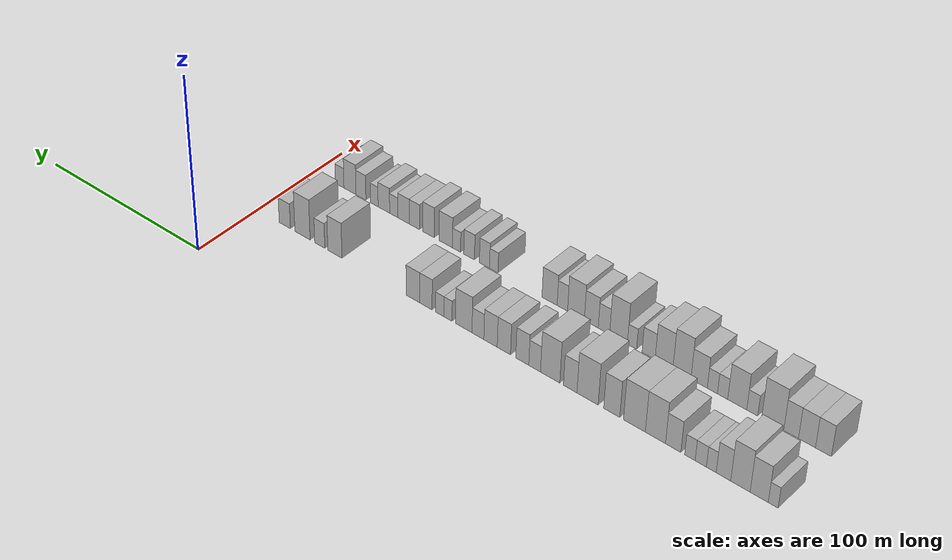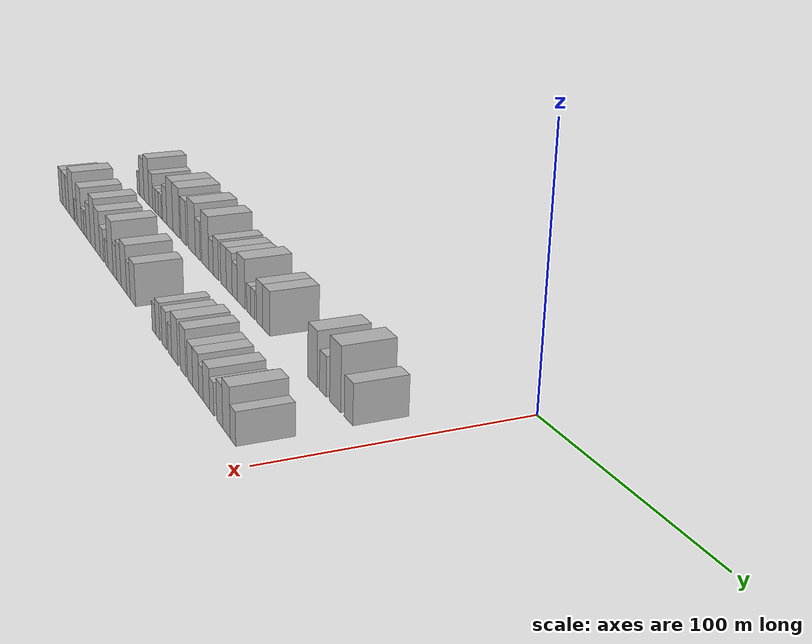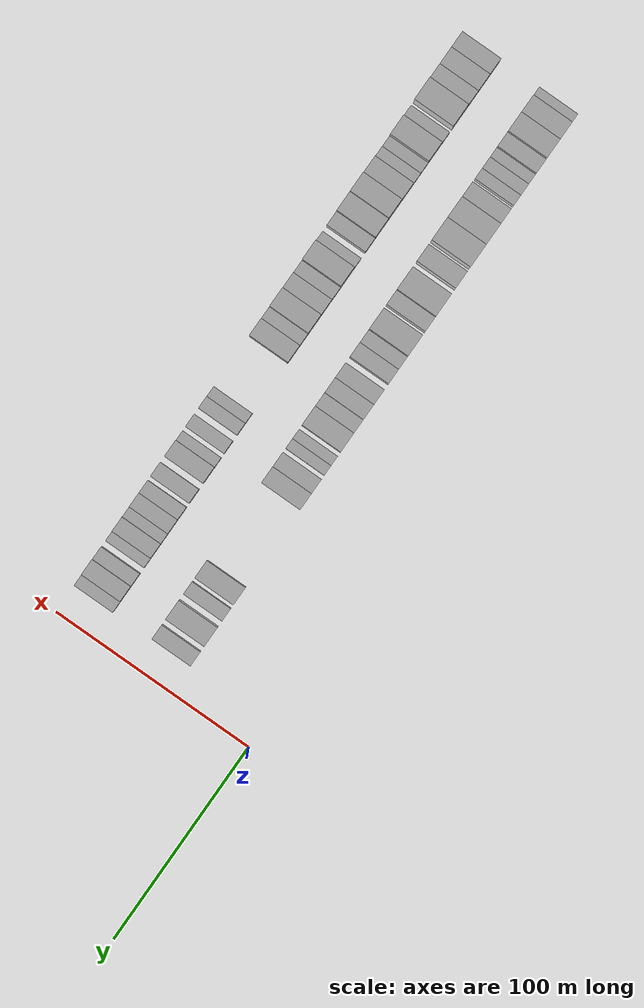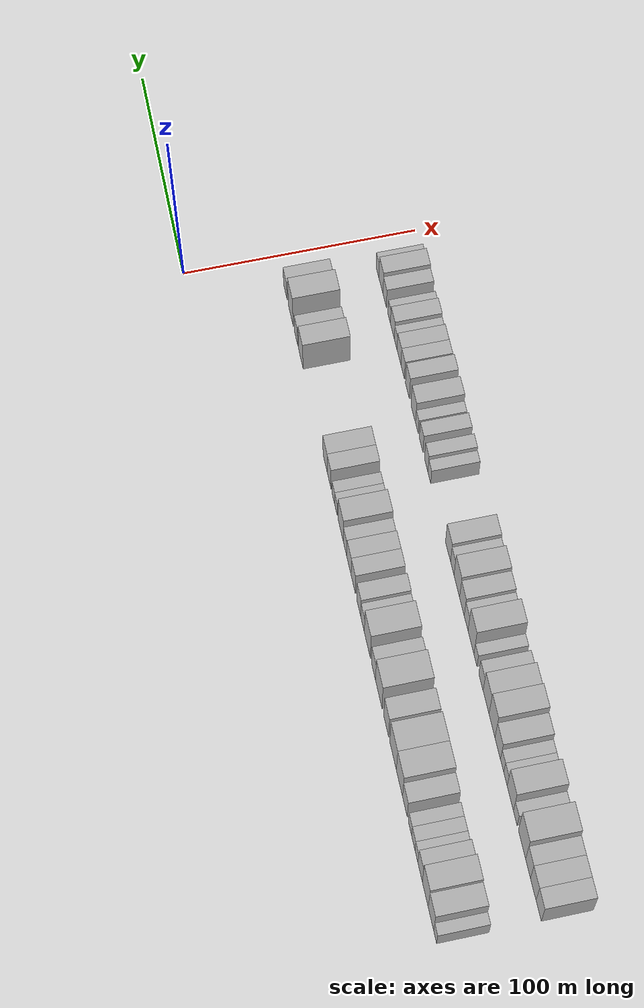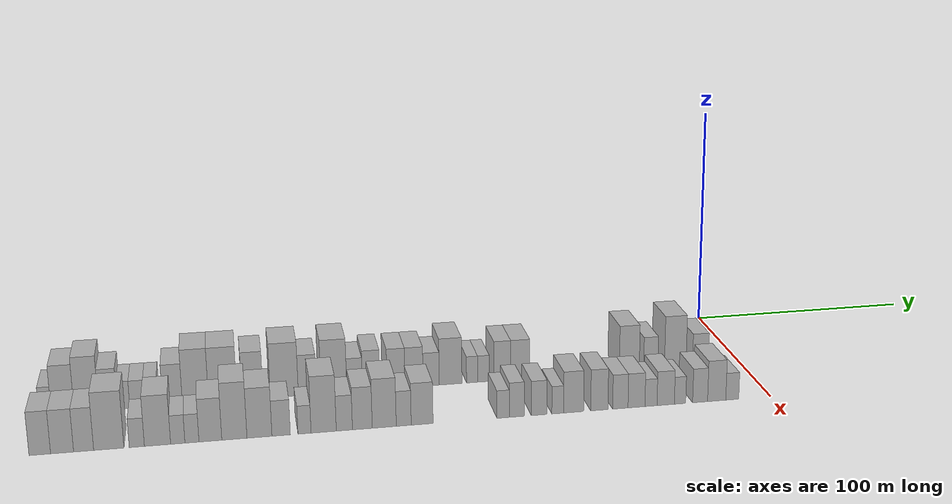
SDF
<sdf version="1.6">
 <world name="default">
  <model name="building_1">
   <static>1</static>
   <pose>50.0000 -297.5527 0 0.000000 0.000000 0.000000</pose>
   <link name="link">
    <pose>0 0 6.00 0 0 0</pose>
    <collision name="collision"><geometry><box><size>20.0000 4.8946 12.0000</size></box></geometry></collision>
    <visual name="visual">
     <cast_shadows>0</cast_shadows>
     <geometry><box><size>20.0000 4.8946 12.0000</size></box></geometry>
     <material>
      <script>
       <uri>model://HANNAS_wall/materials/scripts</uri>
       <uri>model://HANNAS_wall/materials/textures</uri>
       <name>vrc/HANNAS_wall</name>
      </script>
     </material>
    </visual>
   </link>
  </model>
  <model name="building_2">
   <static>1</static>
   <pose>50.0000 -290.5710 0 0.000000 0.000000 0.000000</pose>
   <link name="link">
    <pose>0 0 10.50 0 0 0</pose>
    <collision name="collision"><geometry><box><size>20.0000 9.0688 21.0000</size></box></geometry></collision>
    <visual name="visual">
     <cast_shadows>0</cast_shadows>
     <geometry><box><size>20.0000 9.0688 21.0000</size></box></geometry>
     <material>
      <script>
       <uri>model://HANNAS_wall/materials/scripts</uri>
       <uri>model://HANNAS_wall/materials/textures</uri>
       <name>vrc/HANNAS_wall</name>
      </script>
     </material>
    </visual>
   </link>
  </model>
  <model name="building_3">
   <static>1</static>
   <pose>50.0000 -281.1410 0 0.000000 0.000000 0.000000</pose>
   <link name="link">
    <pose>0 0 12.00 0 0 0</pose>
    <collision name="collision"><geometry><box><size>20.0000 9.7911 24.0000</size></box></geometry></collision>
    <visual name="visual">
     <cast_shadows>0</cast_shadows>
     <geometry><box><size>20.0000 9.7911 24.0000</size></box></geometry>
     <material>
      <script>
       <uri>model://HANNAS_wall/materials/scripts</uri>
       <uri>model://HANNAS_wall/materials/textures</uri>
       <name>vrc/HANNAS_wall</name>
      </script>
     </material>
    </visual>
   </link>
  </model>
  <model name="building_4">
   <static>1</static>
   <pose>50.0000 -272.5372 0 0.000000 0.000000 0.000000</pose>
   <link name="link">
    <pose>0 0 9.00 0 0 0</pose>
    <collision name="collision"><geometry><box><size>20.0000 7.4165 18.0000</size></box></geometry></collision>
    <visual name="visual">
     <cast_shadows>0</cast_shadows>
     <geometry><box><size>20.0000 7.4165 18.0000</size></box></geometry>
     <material>
      <script>
       <uri>model://HANNAS_wall/materials/scripts</uri>
       <uri>model://HANNAS_wall/materials/textures</uri>
       <name>vrc/HANNAS_wall</name>
      </script>
     </material>
    </visual>
   </link>
  </model>
  <model name="building_5">
   <static>1</static>
   <pose>50.0000 -266.3257 0 0.000000 0.000000 0.000000</pose>
   <link name="link">
    <pose>0 0 6.00 0 0 0</pose>
    <collision name="collision"><geometry><box><size>20.0000 5.0066 12.0000</size></box></geometry></collision>
    <visual name="visual">
     <cast_shadows>0</cast_shadows>
     <geometry><box><size>20.0000 5.0066 12.0000</size></box></geometry>
     <material>
      <script>
       <uri>model://HANNAS_wall/materials/scripts</uri>
       <uri>model://HANNAS_wall/materials/textures</uri>
       <name>vrc/HANNAS_wall</name>
      </script>
     </material>
    </visual>
   </link>
  </model>
  <model name="building_6">
   <static>1</static>
   <pose>50.0000 -260.9145 0 0.000000 0.000000 0.000000</pose>
   <link name="link">
    <pose>0 0 6.00 0 0 0</pose>
    <collision name="collision"><geometry><box><size>20.0000 5.8157 12.0000</size></box></geometry></collision>
    <visual name="visual">
     <cast_shadows>0</cast_shadows>
     <geometry><box><size>20.0000 5.8157 12.0000</size></box></geometry>
     <material>
      <script>
       <uri>model://HANNAS_wall/materials/scripts</uri>
       <uri>model://HANNAS_wall/materials/textures</uri>
       <name>vrc/HANNAS_wall</name>
      </script>
     </material>
    </visual>
   </link>
  </model>
  <model name="building_7">
   <static>1</static>
   <pose>50.0000 -255.2807 0 0.000000 0.000000 0.000000</pose>
   <link name="link">
    <pose>0 0 6.00 0 0 0</pose>
    <collision name="collision"><geometry><box><size>20.0000 5.4520 12.0000</size></box></geometry></collision>
    <visual name="visual">
     <cast_shadows>0</cast_shadows>
     <geometry><box><size>20.0000 5.4520 12.0000</size></box></geometry>
     <material>
      <script>
       <uri>model://HANNAS_wall/materials/scripts</uri>
       <uri>model://HANNAS_wall/materials/textures</uri>
       <name>vrc/HANNAS_wall</name>
      </script>
     </material>
    </visual>
   </link>
  </model>
  <model name="building_8">
   <static>1</static>
   <pose>50.0000 -246.5573 0 0.000000 0.000000 0.000000</pose>
   <link name="link">
    <pose>0 0 9.00 0 0 0</pose>
    <collision name="collision"><geometry><box><size>20.0000 7.9948 18.0000</size></box></geometry></collision>
    <visual name="visual">
     <cast_shadows>0</cast_shadows>
     <geometry><box><size>20.0000 7.9948 18.0000</size></box></geometry>
     <material>
      <script>
       <uri>model://HANNAS_wall/materials/scripts</uri>
       <uri>model://HANNAS_wall/materials/textures</uri>
       <name>vrc/HANNAS_wall</name>
      </script>
     </material>
    </visual>
   </link>
  </model>
  <model name="building_9">
   <static>1</static>
   <pose>50.0000 -237.2130 0 0.000000 0.000000 0.000000</pose>
   <link name="link">
    <pose>0 0 12.00 0 0 0</pose>
    <collision name="collision"><geometry><box><size>20.0000 10.6939 24.0000</size></box></geometry></collision>
    <visual name="visual">
     <cast_shadows>0</cast_shadows>
     <geometry><box><size>20.0000 10.6939 24.0000</size></box></geometry>
     <material>
      <script>
       <uri>model://HANNAS_wall/materials/scripts</uri>
       <uri>model://HANNAS_wall/materials/textures</uri>
       <name>vrc/HANNAS_wall</name>
      </script>
     </material>
    </visual>
   </link>
  </model>
  <model name="building_10">
   <static>1</static>
   <pose>50.0000 -226.0155 0 0.000000 0.000000 0.000000</pose>
   <link name="link">
    <pose>0 0 12.00 0 0 0</pose>
    <collision name="collision"><geometry><box><size>20.0000 11.7012 24.0000</size></box></geometry></collision>
    <visual name="visual">
     <cast_shadows>0</cast_shadows>
     <geometry><box><size>20.0000 11.7012 24.0000</size></box></geometry>
     <material>
      <script>
       <uri>model://HANNAS_wall/materials/scripts</uri>
       <uri>model://HANNAS_wall/materials/textures</uri>
       <name>vrc/HANNAS_wall</name>
      </script>
     </material>
    </visual>
   </link>
  </model>
  <model name="building_11">
   <static>1</static>
   <pose>50.0000 -213.7931 0 0.000000 0.000000 0.000000</pose>
   <link name="link">
    <pose>0 0 10.50 0 0 0</pose>
    <collision name="collision"><geometry><box><size>20.0000 8.7436 21.0000</size></box></geometry></collision>
    <visual name="visual">
     <cast_shadows>0</cast_shadows>
     <geometry><box><size>20.0000 8.7436 21.0000</size></box></geometry>
     <material>
      <script>
       <uri>model://HANNAS_wall/materials/scripts</uri>
       <uri>model://HANNAS_wall/materials/textures</uri>
       <name>vrc/HANNAS_wall</name>
      </script>
     </material>
    </visual>
   </link>
  </model>
  <model name="building_12">
   <static>1</static>
   <pose>50.0000 -200.5853 0 0.000000 0.000000 0.000000</pose>
   <link name="link">
    <pose>0 0 12.00 0 0 0</pose>
    <collision name="collision"><geometry><box><size>20.0000 11.6719 24.0000</size></box></geometry></collision>
    <visual name="visual">
     <cast_shadows>0</cast_shadows>
     <geometry><box><size>20.0000 11.6719 24.0000</size></box></geometry>
     <material>
      <script>
       <uri>model://HANNAS_wall/materials/scripts</uri>
       <uri>model://HANNAS_wall/materials/textures</uri>
       <name>vrc/HANNAS_wall</name>
      </script>
     </material>
    </visual>
   </link>
  </model>
  <model name="building_13">
   <static>1</static>
   <pose>50.0000 -190.9823 0 0.000000 0.000000 0.000000</pose>
   <link name="link">
    <pose>0 0 9.00 0 0 0</pose>
    <collision name="collision"><geometry><box><size>20.0000 7.5342 18.0000</size></box></geometry></collision>
    <visual name="visual">
     <cast_shadows>0</cast_shadows>
     <geometry><box><size>20.0000 7.5342 18.0000</size></box></geometry>
     <material>
      <script>
       <uri>model://HANNAS_wall/materials/scripts</uri>
       <uri>model://HANNAS_wall/materials/textures</uri>
       <name>vrc/HANNAS_wall</name>
      </script>
     </material>
    </visual>
   </link>
  </model>
  <model name="building_14">
   <static>1</static>
   <pose>50.0000 -179.7867 0 0.000000 0.000000 0.000000</pose>
   <link name="link">
    <pose>0 0 12.00 0 0 0</pose>
    <collision name="collision"><geometry><box><size>20.0000 10.8569 24.0000</size></box></geometry></collision>
    <visual name="visual">
     <cast_shadows>0</cast_shadows>
     <geometry><box><size>20.0000 10.8569 24.0000</size></box></geometry>
     <material>
      <script>
       <uri>model://HANNAS_wall/materials/scripts</uri>
       <uri>model://HANNAS_wall/materials/textures</uri>
       <name>vrc/HANNAS_wall</name>
      </script>
     </material>
    </visual>
   </link>
  </model>
  <model name="building_15">
   <static>1</static>
   <pose>50.0000 -171.0333 0 0.000000 0.000000 0.000000</pose>
   <link name="link">
    <pose>0 0 7.50 0 0 0</pose>
    <collision name="collision"><geometry><box><size>20.0000 6.6499 15.0000</size></box></geometry></collision>
    <visual name="visual">
     <cast_shadows>0</cast_shadows>
     <geometry><box><size>20.0000 6.6499 15.0000</size></box></geometry>
     <material>
      <script>
       <uri>model://HANNAS_wall/materials/scripts</uri>
       <uri>model://HANNAS_wall/materials/textures</uri>
       <name>vrc/HANNAS_wall</name>
      </script>
     </material>
    </visual>
   </link>
  </model>
  <model name="building_16">
   <static>1</static>
   <pose>50.0000 -163.9777 0 0.000000 0.000000 0.000000</pose>
   <link name="link">
    <pose>0 0 9.00 0 0 0</pose>
    <collision name="collision"><geometry><box><size>20.0000 7.4614 18.0000</size></box></geometry></collision>
    <visual name="visual">
     <cast_shadows>0</cast_shadows>
     <geometry><box><size>20.0000 7.4614 18.0000</size></box></geometry>
     <material>
      <script>
       <uri>model://HANNAS_wall/materials/scripts</uri>
       <uri>model://HANNAS_wall/materials/textures</uri>
       <name>vrc/HANNAS_wall</name>
      </script>
     </material>
    </visual>
   </link>
  </model>
  <model name="building_17">
   <static>1</static>
   <pose>50.0000 -153.3974 0 0.000000 0.000000 0.000000</pose>
   <link name="link">
    <pose>0 0 9.00 0 0 0</pose>
    <collision name="collision"><geometry><box><size>20.0000 7.6990 18.0000</size></box></geometry></collision>
    <visual name="visual">
     <cast_shadows>0</cast_shadows>
     <geometry><box><size>20.0000 7.6990 18.0000</size></box></geometry>
     <material>
      <script>
       <uri>model://HANNAS_wall/materials/scripts</uri>
       <uri>model://HANNAS_wall/materials/textures</uri>
       <name>vrc/HANNAS_wall</name>
      </script>
     </material>
    </visual>
   </link>
  </model>
  <model name="building_18">
   <static>1</static>
   <pose>50.0000 -145.6617 0 0.000000 0.000000 0.000000</pose>
   <link name="link">
    <pose>0 0 9.00 0 0 0</pose>
    <collision name="collision"><geometry><box><size>20.0000 7.7725 18.0000</size></box></geometry></collision>
    <visual name="visual">
     <cast_shadows>0</cast_shadows>
     <geometry><box><size>20.0000 7.7725 18.0000</size></box></geometry>
     <material>
      <script>
       <uri>model://HANNAS_wall/materials/scripts</uri>
       <uri>model://HANNAS_wall/materials/textures</uri>
       <name>vrc/HANNAS_wall</name>
      </script>
     </material>
    </visual>
   </link>
  </model>
  <model name="building_19">
   <static>1</static>
   <pose>50.0000 -138.2961 0 0.000000 0.000000 0.000000</pose>
   <link name="link">
    <pose>0 0 7.50 0 0 0</pose>
    <collision name="collision"><geometry><box><size>20.0000 6.9588 15.0000</size></box></geometry></collision>
    <visual name="visual">
     <cast_shadows>0</cast_shadows>
     <geometry><box><size>20.0000 6.9588 15.0000</size></box></geometry>
     <material>
      <script>
       <uri>model://HANNAS_wall/materials/scripts</uri>
       <uri>model://HANNAS_wall/materials/textures</uri>
       <name>vrc/HANNAS_wall</name>
      </script>
     </material>
    </visual>
   </link>
  </model>
  <model name="building_20">
   <static>1</static>
   <pose>50.0000 -129.9064 0 0.000000 0.000000 0.000000</pose>
   <link name="link">
    <pose>0 0 10.50 0 0 0</pose>
    <collision name="collision"><geometry><box><size>20.0000 9.8205 21.0000</size></box></geometry></collision>
    <visual name="visual">
     <cast_shadows>0</cast_shadows>
     <geometry><box><size>20.0000 9.8205 21.0000</size></box></geometry>
     <material>
      <script>
       <uri>model://HANNAS_wall/materials/scripts</uri>
       <uri>model://HANNAS_wall/materials/textures</uri>
       <name>vrc/HANNAS_wall</name>
      </script>
     </material>
    </visual>
   </link>
  </model>
  <model name="building_21">
   <static>1</static>
   <pose>50.0000 -120.5485 0 0.000000 0.000000 0.000000</pose>
   <link name="link">
    <pose>0 0 6.00 0 0 0</pose>
    <collision name="collision"><geometry><box><size>20.0000 4.8953 12.0000</size></box></geometry></collision>
    <visual name="visual">
     <cast_shadows>0</cast_shadows>
     <geometry><box><size>20.0000 4.8953 12.0000</size></box></geometry>
     <material>
      <script>
       <uri>model://HANNAS_wall/materials/scripts</uri>
       <uri>model://HANNAS_wall/materials/textures</uri>
       <name>vrc/HANNAS_wall</name>
      </script>
     </material>
    </visual>
   </link>
  </model>
  <model name="building_22">
   <static>1</static>
   <pose>50.0000 -115.5680 0 0.000000 0.000000 0.000000</pose>
   <link name="link">
    <pose>0 0 6.00 0 0 0</pose>
    <collision name="collision"><geometry><box><size>20.0000 5.0657 12.0000</size></box></geometry></collision>
    <visual name="visual">
     <cast_shadows>0</cast_shadows>
     <geometry><box><size>20.0000 5.0657 12.0000</size></box></geometry>
     <material>
      <script>
       <uri>model://HANNAS_wall/materials/scripts</uri>
       <uri>model://HANNAS_wall/materials/textures</uri>
       <name>vrc/HANNAS_wall</name>
      </script>
     </material>
    </visual>
   </link>
  </model>
  <model name="building_23">
   <static>1</static>
   <pose>50.0000 -107.3214 0 0.000000 0.000000 0.000000</pose>
   <link name="link">
    <pose>0 0 9.00 0 0 0</pose>
    <collision name="collision"><geometry><box><size>20.0000 7.4274 18.0000</size></box></geometry></collision>
    <visual name="visual">
     <cast_shadows>0</cast_shadows>
     <geometry><box><size>20.0000 7.4274 18.0000</size></box></geometry>
     <material>
      <script>
       <uri>model://HANNAS_wall/materials/scripts</uri>
       <uri>model://HANNAS_wall/materials/textures</uri>
       <name>vrc/HANNAS_wall</name>
      </script>
     </material>
    </visual>
   </link>
  </model>
  <model name="building_24">
   <static>1</static>
   <pose>50.0000 -99.4239 0 0.000000 0.000000 0.000000</pose>
   <link name="link">
    <pose>0 0 9.00 0 0 0</pose>
    <collision name="collision"><geometry><box><size>20.0000 8.3677 18.0000</size></box></geometry></collision>
    <visual name="visual">
     <cast_shadows>0</cast_shadows>
     <geometry><box><size>20.0000 8.3677 18.0000</size></box></geometry>
     <material>
      <script>
       <uri>model://HANNAS_wall/materials/scripts</uri>
       <uri>model://HANNAS_wall/materials/textures</uri>
       <name>vrc/HANNAS_wall</name>
      </script>
     </material>
    </visual>
   </link>
  </model>
  <model name="building_25">
   <static>1</static>
   <pose>50.0000 -50.7242 0 0.000000 0.000000 0.000000</pose>
   <link name="link">
    <pose>0 0 10.50 0 0 0</pose>
    <collision name="collision"><geometry><box><size>20.0000 9.0105 21.0000</size></box></geometry></collision>
    <visual name="visual">
     <cast_shadows>0</cast_shadows>
     <geometry><box><size>20.0000 9.0105 21.0000</size></box></geometry>
     <material>
      <script>
       <uri>model://HANNAS_wall/materials/scripts</uri>
       <uri>model://HANNAS_wall/materials/textures</uri>
       <name>vrc/HANNAS_wall</name>
      </script>
     </material>
    </visual>
   </link>
  </model>
  <model name="building_26">
   <static>1</static>
   <pose>50.0000 -40.9779 0 0.000000 0.000000 0.000000</pose>
   <link name="link">
    <pose>0 0 7.50 0 0 0</pose>
    <collision name="collision"><geometry><box><size>20.0000 6.4822 15.0000</size></box></geometry></collision>
    <visual name="visual">
     <cast_shadows>0</cast_shadows>
     <geometry><box><size>20.0000 6.4822 15.0000</size></box></geometry>
     <material>
      <script>
       <uri>model://HANNAS_wall/materials/scripts</uri>
       <uri>model://HANNAS_wall/materials/textures</uri>
       <name>vrc/HANNAS_wall</name>
      </script>
     </material>
    </visual>
   </link>
  </model>
  <model name="building_27">
   <static>1</static>
   <pose>50.0000 -29.8061 0 0.000000 0.000000 0.000000</pose>
   <link name="link">
    <pose>0 0 12.00 0 0 0</pose>
    <collision name="collision"><geometry><box><size>20.0000 9.8613 24.0000</size></box></geometry></collision>
    <visual name="visual">
     <cast_shadows>0</cast_shadows>
     <geometry><box><size>20.0000 9.8613 24.0000</size></box></geometry>
     <material>
      <script>
       <uri>model://HANNAS_wall/materials/scripts</uri>
       <uri>model://HANNAS_wall/materials/textures</uri>
       <name>vrc/HANNAS_wall</name>
      </script>
     </material>
    </visual>
   </link>
  </model>
  <model name="building_28">
   <static>1</static>
   <pose>50.0000 -18.1943 0 0.000000 0.000000 0.000000</pose>
   <link name="link">
    <pose>0 0 7.50 0 0 0</pose>
    <collision name="collision"><geometry><box><size>20.0000 7.3623 15.0000</size></box></geometry></collision>
    <visual name="visual">
     <cast_shadows>0</cast_shadows>
     <geometry><box><size>20.0000 7.3623 15.0000</size></box></geometry>
     <material>
      <script>
       <uri>model://HANNAS_wall/materials/scripts</uri>
       <uri>model://HANNAS_wall/materials/textures</uri>
       <name>vrc/HANNAS_wall</name>
      </script>
     </material>
    </visual>
   </link>
  </model>
  <model name="building_63">
   <static>1</static>
   <pose>90.0000 -296.0039 0 0.000000 0.000000 0.000000</pose>
   <link name="link">
    <pose>0 0 9.00 0 0 0</pose>
    <collision name="collision"><geometry><box><size>20.0000 7.9922 18.0000</size></box></geometry></collision>
    <visual name="visual">
     <cast_shadows>0</cast_shadows>
     <geometry><box><size>20.0000 7.9922 18.0000</size></box></geometry>
     <material>
      <script>
       <uri>model://HANNAS_wall/materials/scripts</uri>
       <uri>model://HANNAS_wall/materials/textures</uri>
       <name>vrc/HANNAS_wall</name>
      </script>
     </material>
    </visual>
   </link>
  </model>
  <model name="building_64">
   <static>1</static>
   <pose>90.0000 -287.7152 0 0.000000 0.000000 0.000000</pose>
   <link name="link">
    <pose>0 0 9.00 0 0 0</pose>
    <collision name="collision"><geometry><box><size>20.0000 8.5852 18.0000</size></box></geometry></collision>
    <visual name="visual">
     <cast_shadows>0</cast_shadows>
     <geometry><box><size>20.0000 8.5852 18.0000</size></box></geometry>
     <material>
      <script>
       <uri>model://HANNAS_wall/materials/scripts</uri>
       <uri>model://HANNAS_wall/materials/textures</uri>
       <name>vrc/HANNAS_wall</name>
      </script>
     </material>
    </visual>
   </link>
  </model>
  <model name="building_65">
   <static>1</static>
   <pose>90.0000 -279.6660 0 0.000000 0.000000 0.000000</pose>
   <link name="link">
    <pose>0 0 9.00 0 0 0</pose>
    <collision name="collision"><geometry><box><size>20.0000 7.5131 18.0000</size></box></geometry></collision>
    <visual name="visual">
     <cast_shadows>0</cast_shadows>
     <geometry><box><size>20.0000 7.5131 18.0000</size></box></geometry>
     <material>
      <script>
       <uri>model://HANNAS_wall/materials/scripts</uri>
       <uri>model://HANNAS_wall/materials/textures</uri>
       <name>vrc/HANNAS_wall</name>
      </script>
     </material>
    </visual>
   </link>
  </model>
  <model name="building_66">
   <static>1</static>
   <pose>90.0000 -270.2034 0 0.000000 0.000000 0.000000</pose>
   <link name="link">
    <pose>0 0 12.00 0 0 0</pose>
    <collision name="collision"><geometry><box><size>20.0000 11.4122 24.0000</size></box></geometry></collision>
    <visual name="visual">
     <cast_shadows>0</cast_shadows>
     <geometry><box><size>20.0000 11.4122 24.0000</size></box></geometry>
     <material>
      <script>
       <uri>model://HANNAS_wall/materials/scripts</uri>
       <uri>model://HANNAS_wall/materials/textures</uri>
       <name>vrc/HANNAS_wall</name>
      </script>
     </material>
    </visual>
   </link>
  </model>
  <model name="building_67">
   <static>1</static>
   <pose>90.0000 -259.6181 0 0.000000 0.000000 0.000000</pose>
   <link name="link">
    <pose>0 0 6.00 0 0 0</pose>
    <collision name="collision"><geometry><box><size>20.0000 5.7584 12.0000</size></box></geometry></collision>
    <visual name="visual">
     <cast_shadows>0</cast_shadows>
     <geometry><box><size>20.0000 5.7584 12.0000</size></box></geometry>
     <material>
      <script>
       <uri>model://HANNAS_wall/materials/scripts</uri>
       <uri>model://HANNAS_wall/materials/textures</uri>
       <name>vrc/HANNAS_wall</name>
      </script>
     </material>
    </visual>
   </link>
  </model>
  <model name="building_68">
   <static>1</static>
   <pose>90.0000 -251.7395 0 0.000000 0.000000 0.000000</pose>
   <link name="link">
    <pose>0 0 10.50 0 0 0</pose>
    <collision name="collision"><geometry><box><size>20.0000 9.9990 21.0000</size></box></geometry></collision>
    <visual name="visual">
     <cast_shadows>0</cast_shadows>
     <geometry><box><size>20.0000 9.9990 21.0000</size></box></geometry>
     <material>
      <script>
       <uri>model://HANNAS_wall/materials/scripts</uri>
       <uri>model://HANNAS_wall/materials/textures</uri>
       <name>vrc/HANNAS_wall</name>
      </script>
     </material>
    </visual>
   </link>
  </model>
  <model name="building_69">
   <static>1</static>
   <pose>90.0000 -244.0031 0 0.000000 0.000000 0.000000</pose>
   <link name="link">
    <pose>0 0 6.00 0 0 0</pose>
    <collision name="collision"><geometry><box><size>20.0000 5.4736 12.0000</size></box></geometry></collision>
    <visual name="visual">
     <cast_shadows>0</cast_shadows>
     <geometry><box><size>20.0000 5.4736 12.0000</size></box></geometry>
     <material>
      <script>
       <uri>model://HANNAS_wall/materials/scripts</uri>
       <uri>model://HANNAS_wall/materials/textures</uri>
       <name>vrc/HANNAS_wall</name>
      </script>
     </material>
    </visual>
   </link>
  </model>
  <model name="building_70">
   <static>1</static>
   <pose>90.0000 -238.5726 0 0.000000 0.000000 0.000000</pose>
   <link name="link">
    <pose>0 0 6.00 0 0 0</pose>
    <collision name="collision"><geometry><box><size>20.0000 5.3874 12.0000</size></box></geometry></collision>
    <visual name="visual">
     <cast_shadows>0</cast_shadows>
     <geometry><box><size>20.0000 5.3874 12.0000</size></box></geometry>
     <material>
      <script>
       <uri>model://HANNAS_wall/materials/scripts</uri>
       <uri>model://HANNAS_wall/materials/textures</uri>
       <name>vrc/HANNAS_wall</name>
      </script>
     </material>
    </visual>
   </link>
  </model>
  <model name="building_71">
   <static>1</static>
   <pose>90.0000 -231.4706 0 0.000000 0.000000 0.000000</pose>
   <link name="link">
    <pose>0 0 9.00 0 0 0</pose>
    <collision name="collision"><geometry><box><size>20.0000 8.8167 18.0000</size></box></geometry></collision>
    <visual name="visual">
     <cast_shadows>0</cast_shadows>
     <geometry><box><size>20.0000 8.8167 18.0000</size></box></geometry>
     <material>
      <script>
       <uri>model://HANNAS_wall/materials/scripts</uri>
       <uri>model://HANNAS_wall/materials/textures</uri>
       <name>vrc/HANNAS_wall</name>
      </script>
     </material>
    </visual>
   </link>
  </model>
  <model name="building_72">
   <static>1</static>
   <pose>90.0000 -222.1807 0 0.000000 0.000000 0.000000</pose>
   <link name="link">
    <pose>0 0 12.00 0 0 0</pose>
    <collision name="collision"><geometry><box><size>20.0000 9.7631 24.0000</size></box></geometry></collision>
    <visual name="visual">
     <cast_shadows>0</cast_shadows>
     <geometry><box><size>20.0000 9.7631 24.0000</size></box></geometry>
     <material>
      <script>
       <uri>model://HANNAS_wall/materials/scripts</uri>
       <uri>model://HANNAS_wall/materials/textures</uri>
       <name>vrc/HANNAS_wall</name>
      </script>
     </material>
    </visual>
   </link>
  </model>
  <model name="building_73">
   <static>1</static>
   <pose>90.0000 -212.4226 0 0.000000 0.000000 0.000000</pose>
   <link name="link">
    <pose>0 0 10.50 0 0 0</pose>
    <collision name="collision"><geometry><box><size>20.0000 9.7531 21.0000</size></box></geometry></collision>
    <visual name="visual">
     <cast_shadows>0</cast_shadows>
     <geometry><box><size>20.0000 9.7531 21.0000</size></box></geometry>
     <material>
      <script>
       <uri>model://HANNAS_wall/materials/scripts</uri>
       <uri>model://HANNAS_wall/materials/textures</uri>
       <name>vrc/HANNAS_wall</name>
      </script>
     </material>
    </visual>
   </link>
  </model>
  <model name="building_74">
   <static>1</static>
   <pose>90.0000 -203.9329 0 0.000000 0.000000 0.000000</pose>
   <link name="link">
    <pose>0 0 7.50 0 0 0</pose>
    <collision name="collision"><geometry><box><size>20.0000 7.2262 15.0000</size></box></geometry></collision>
    <visual name="visual">
     <cast_shadows>0</cast_shadows>
     <geometry><box><size>20.0000 7.2262 15.0000</size></box></geometry>
     <material>
      <script>
       <uri>model://HANNAS_wall/materials/scripts</uri>
       <uri>model://HANNAS_wall/materials/textures</uri>
       <name>vrc/HANNAS_wall</name>
      </script>
     </material>
    </visual>
   </link>
  </model>
  <model name="building_75">
   <static>1</static>
   <pose>90.0000 -194.7402 0 0.000000 0.000000 0.000000</pose>
   <link name="link">
    <pose>0 0 6.00 0 0 0</pose>
    <collision name="collision"><geometry><box><size>20.0000 5.1591 12.0000</size></box></geometry></collision>
    <visual name="visual">
     <cast_shadows>0</cast_shadows>
     <geometry><box><size>20.0000 5.1591 12.0000</size></box></geometry>
     <material>
      <script>
       <uri>model://HANNAS_wall/materials/scripts</uri>
       <uri>model://HANNAS_wall/materials/textures</uri>
       <name>vrc/HANNAS_wall</name>
      </script>
     </material>
    </visual>
   </link>
  </model>
  <model name="building_76">
   <static>1</static>
   <pose>90.0000 -187.1590 0 0.000000 0.000000 0.000000</pose>
   <link name="link">
    <pose>0 0 12.00 0 0 0</pose>
    <collision name="collision"><geometry><box><size>20.0000 10.0033 24.0000</size></box></geometry></collision>
    <visual name="visual">
     <cast_shadows>0</cast_shadows>
     <geometry><box><size>20.0000 10.0033 24.0000</size></box></geometry>
     <material>
      <script>
       <uri>model://HANNAS_wall/materials/scripts</uri>
       <uri>model://HANNAS_wall/materials/textures</uri>
       <name>vrc/HANNAS_wall</name>
      </script>
     </material>
    </visual>
   </link>
  </model>
  <model name="building_77">
   <static>1</static>
   <pose>90.0000 -178.9375 0 0.000000 0.000000 0.000000</pose>
   <link name="link">
    <pose>0 0 7.50 0 0 0</pose>
    <collision name="collision"><geometry><box><size>20.0000 6.4396 15.0000</size></box></geometry></collision>
    <visual name="visual">
     <cast_shadows>0</cast_shadows>
     <geometry><box><size>20.0000 6.4396 15.0000</size></box></geometry>
     <material>
      <script>
       <uri>model://HANNAS_wall/materials/scripts</uri>
       <uri>model://HANNAS_wall/materials/textures</uri>
       <name>vrc/HANNAS_wall</name>
      </script>
     </material>
    </visual>
   </link>
  </model>
  <model name="building_78">
   <static>1</static>
   <pose>90.0000 -171.7563 0 0.000000 0.000000 0.000000</pose>
   <link name="link">
    <pose>0 0 9.00 0 0 0</pose>
    <collision name="collision"><geometry><box><size>20.0000 7.9229 18.0000</size></box></geometry></collision>
    <visual name="visual">
     <cast_shadows>0</cast_shadows>
     <geometry><box><size>20.0000 7.9229 18.0000</size></box></geometry>
     <material>
      <script>
       <uri>model://HANNAS_wall/materials/scripts</uri>
       <uri>model://HANNAS_wall/materials/textures</uri>
       <name>vrc/HANNAS_wall</name>
      </script>
     </material>
    </visual>
   </link>
  </model>
  <model name="building_79">
   <static>1</static>
   <pose>90.0000 -162.9646 0 0.000000 0.000000 0.000000</pose>
   <link name="link">
    <pose>0 0 10.50 0 0 0</pose>
    <collision name="collision"><geometry><box><size>20.0000 9.6606 21.0000</size></box></geometry></collision>
    <visual name="visual">
     <cast_shadows>0</cast_shadows>
     <geometry><box><size>20.0000 9.6606 21.0000</size></box></geometry>
     <material>
      <script>
       <uri>model://HANNAS_wall/materials/scripts</uri>
       <uri>model://HANNAS_wall/materials/textures</uri>
       <name>vrc/HANNAS_wall</name>
      </script>
     </material>
    </visual>
   </link>
  </model>
  <model name="building_80">
   <static>1</static>
   <pose>90.0000 -155.1130 0 0.000000 0.000000 0.000000</pose>
   <link name="link">
    <pose>0 0 7.50 0 0 0</pose>
    <collision name="collision"><geometry><box><size>20.0000 6.0426 15.0000</size></box></geometry></collision>
    <visual name="visual">
     <cast_shadows>0</cast_shadows>
     <geometry><box><size>20.0000 6.0426 15.0000</size></box></geometry>
     <material>
      <script>
       <uri>model://HANNAS_wall/materials/scripts</uri>
       <uri>model://HANNAS_wall/materials/textures</uri>
       <name>vrc/HANNAS_wall</name>
      </script>
     </material>
    </visual>
   </link>
  </model>
  <model name="building_81">
   <static>1</static>
   <pose>90.0000 -147.6505 0 0.000000 0.000000 0.000000</pose>
   <link name="link">
    <pose>0 0 9.00 0 0 0</pose>
    <collision name="collision"><geometry><box><size>20.0000 8.8825 18.0000</size></box></geometry></collision>
    <visual name="visual">
     <cast_shadows>0</cast_shadows>
     <geometry><box><size>20.0000 8.8825 18.0000</size></box></geometry>
     <material>
      <script>
       <uri>model://HANNAS_wall/materials/scripts</uri>
       <uri>model://HANNAS_wall/materials/textures</uri>
       <name>vrc/HANNAS_wall</name>
      </script>
     </material>
    </visual>
   </link>
  </model>
  <model name="building_82">
   <static>1</static>
   <pose>90.0000 -114.4663 0 0.000000 0.000000 0.000000</pose>
   <link name="link">
    <pose>0 0 6.00 0 0 0</pose>
    <collision name="collision"><geometry><box><size>20.0000 5.1620 12.0000</size></box></geometry></collision>
    <visual name="visual">
     <cast_shadows>0</cast_shadows>
     <geometry><box><size>20.0000 5.1620 12.0000</size></box></geometry>
     <material>
      <script>
       <uri>model://HANNAS_wall/materials/scripts</uri>
       <uri>model://HANNAS_wall/materials/textures</uri>
       <name>vrc/HANNAS_wall</name>
      </script>
     </material>
    </visual>
   </link>
  </model>
  <model name="building_83">
   <static>1</static>
   <pose>90.0000 -108.8136 0 0.000000 0.000000 0.000000</pose>
   <link name="link">
    <pose>0 0 7.50 0 0 0</pose>
    <collision name="collision"><geometry><box><size>20.0000 6.1434 15.0000</size></box></geometry></collision>
    <visual name="visual">
     <cast_shadows>0</cast_shadows>
     <geometry><box><size>20.0000 6.1434 15.0000</size></box></geometry>
     <material>
      <script>
       <uri>model://HANNAS_wall/materials/scripts</uri>
       <uri>model://HANNAS_wall/materials/textures</uri>
       <name>vrc/HANNAS_wall</name>
      </script>
     </material>
    </visual>
   </link>
  </model>
  <model name="building_84">
   <static>1</static>
   <pose>90.0000 -99.4643 0 0.000000 0.000000 0.000000</pose>
   <link name="link">
    <pose>0 0 7.50 0 0 0</pose>
    <collision name="collision"><geometry><box><size>20.0000 6.5550 15.0000</size></box></geometry></collision>
    <visual name="visual">
     <cast_shadows>0</cast_shadows>
     <geometry><box><size>20.0000 6.5550 15.0000</size></box></geometry>
     <material>
      <script>
       <uri>model://HANNAS_wall/materials/scripts</uri>
       <uri>model://HANNAS_wall/materials/textures</uri>
       <name>vrc/HANNAS_wall</name>
      </script>
     </material>
    </visual>
   </link>
  </model>
  <model name="building_85">
   <static>1</static>
   <pose>90.0000 -91.7028 0 0.000000 0.000000 0.000000</pose>
   <link name="link">
    <pose>0 0 6.00 0 0 0</pose>
    <collision name="collision"><geometry><box><size>20.0000 4.9681 12.0000</size></box></geometry></collision>
    <visual name="visual">
     <cast_shadows>0</cast_shadows>
     <geometry><box><size>20.0000 4.9681 12.0000</size></box></geometry>
     <material>
      <script>
       <uri>model://HANNAS_wall/materials/scripts</uri>
       <uri>model://HANNAS_wall/materials/textures</uri>
       <name>vrc/HANNAS_wall</name>
      </script>
     </material>
    </visual>
   </link>
  </model>
  <model name="building_86">
   <static>1</static>
   <pose>90.0000 -85.0192 0 0.000000 0.000000 0.000000</pose>
   <link name="link">
    <pose>0 0 9.00 0 0 0</pose>
    <collision name="collision"><geometry><box><size>20.0000 8.3992 18.0000</size></box></geometry></collision>
    <visual name="visual">
     <cast_shadows>0</cast_shadows>
     <geometry><box><size>20.0000 8.3992 18.0000</size></box></geometry>
     <material>
      <script>
       <uri>model://HANNAS_wall/materials/scripts</uri>
       <uri>model://HANNAS_wall/materials/textures</uri>
       <name>vrc/HANNAS_wall</name>
      </script>
     </material>
    </visual>
   </link>
  </model>
  <model name="building_87">
   <static>1</static>
   <pose>90.0000 -74.1754 0 0.000000 0.000000 0.000000</pose>
   <link name="link">
    <pose>0 0 9.00 0 0 0</pose>
    <collision name="collision"><geometry><box><size>20.0000 7.2883 18.0000</size></box></geometry></collision>
    <visual name="visual">
     <cast_shadows>0</cast_shadows>
     <geometry><box><size>20.0000 7.2883 18.0000</size></box></geometry>
     <material>
      <script>
       <uri>model://HANNAS_wall/materials/scripts</uri>
       <uri>model://HANNAS_wall/materials/textures</uri>
       <name>vrc/HANNAS_wall</name>
      </script>
     </material>
    </visual>
   </link>
  </model>
  <model name="building_88">
   <static>1</static>
   <pose>90.0000 -65.2618 0 0.000000 0.000000 0.000000</pose>
   <link name="link">
    <pose>0 0 7.50 0 0 0</pose>
    <collision name="collision"><geometry><box><size>20.0000 6.5390 15.0000</size></box></geometry></collision>
    <visual name="visual">
     <cast_shadows>0</cast_shadows>
     <geometry><box><size>20.0000 6.5390 15.0000</size></box></geometry>
     <material>
      <script>
       <uri>model://HANNAS_wall/materials/scripts</uri>
       <uri>model://HANNAS_wall/materials/textures</uri>
       <name>vrc/HANNAS_wall</name>
      </script>
     </material>
    </visual>
   </link>
  </model>
  <model name="building_89">
   <static>1</static>
   <pose>90.0000 -58.3714 0 0.000000 0.000000 0.000000</pose>
   <link name="link">
    <pose>0 0 7.50 0 0 0</pose>
    <collision name="collision"><geometry><box><size>20.0000 7.2419 15.0000</size></box></geometry></collision>
    <visual name="visual">
     <cast_shadows>0</cast_shadows>
     <geometry><box><size>20.0000 7.2419 15.0000</size></box></geometry>
     <material>
      <script>
       <uri>model://HANNAS_wall/materials/scripts</uri>
       <uri>model://HANNAS_wall/materials/textures</uri>
       <name>vrc/HANNAS_wall</name>
      </script>
     </material>
    </visual>
   </link>
  </model>
  <model name="building_90">
   <static>1</static>
   <pose>90.0000 -52.1600 0 0.000000 0.000000 0.000000</pose>
   <link name="link">
    <pose>0 0 6.00 0 0 0</pose>
    <collision name="collision"><geometry><box><size>20.0000 5.1808 12.0000</size></box></geometry></collision>
    <visual name="visual">
     <cast_shadows>0</cast_shadows>
     <geometry><box><size>20.0000 5.1808 12.0000</size></box></geometry>
     <material>
      <script>
       <uri>model://HANNAS_wall/materials/scripts</uri>
       <uri>model://HANNAS_wall/materials/textures</uri>
       <name>vrc/HANNAS_wall</name>
      </script>
     </material>
    </visual>
   </link>
  </model>
  <model name="building_91">
   <static>1</static>
   <pose>90.0000 -45.8330 0 0.000000 0.000000 0.000000</pose>
   <link name="link">
    <pose>0 0 7.50 0 0 0</pose>
    <collision name="collision"><geometry><box><size>20.0000 7.4730 15.0000</size></box></geometry></collision>
    <visual name="visual">
     <cast_shadows>0</cast_shadows>
     <geometry><box><size>20.0000 7.4730 15.0000</size></box></geometry>
     <material>
      <script>
       <uri>model://HANNAS_wall/materials/scripts</uri>
       <uri>model://HANNAS_wall/materials/textures</uri>
       <name>vrc/HANNAS_wall</name>
      </script>
     </material>
    </visual>
   </link>
  </model>
  <model name="building_92">
   <static>1</static>
   <pose>90.0000 -39.6450 0 0.000000 0.000000 0.000000</pose>
   <link name="link">
    <pose>0 0 6.00 0 0 0</pose>
    <collision name="collision"><geometry><box><size>20.0000 4.9031 12.0000</size></box></geometry></collision>
    <visual name="visual">
     <cast_shadows>0</cast_shadows>
     <geometry><box><size>20.0000 4.9031 12.0000</size></box></geometry>
     <material>
      <script>
       <uri>model://HANNAS_wall/materials/scripts</uri>
       <uri>model://HANNAS_wall/materials/textures</uri>
       <name>vrc/HANNAS_wall</name>
      </script>
     </material>
    </visual>
   </link>
  </model>
  <model name="building_93">
   <static>1</static>
   <pose>90.0000 -30.9460 0 0.000000 0.000000 0.000000</pose>
   <link name="link">
    <pose>0 0 7.50 0 0 0</pose>
    <collision name="collision"><geometry><box><size>20.0000 6.4949 15.0000</size></box></geometry></collision>
    <visual name="visual">
     <cast_shadows>0</cast_shadows>
     <geometry><box><size>20.0000 6.4949 15.0000</size></box></geometry>
     <material>
      <script>
       <uri>model://HANNAS_wall/materials/scripts</uri>
       <uri>model://HANNAS_wall/materials/textures</uri>
       <name>vrc/HANNAS_wall</name>
      </script>
     </material>
    </visual>
   </link>
  </model>
  <model name="building_94">
   <static>1</static>
   <pose>90.0000 -23.7295 0 0.000000 0.000000 0.000000</pose>
   <link name="link">
    <pose>0 0 9.00 0 0 0</pose>
    <collision name="collision"><geometry><box><size>20.0000 7.9380 18.0000</size></box></geometry></collision>
    <visual name="visual">
     <cast_shadows>0</cast_shadows>
     <geometry><box><size>20.0000 7.9380 18.0000</size></box></geometry>
     <material>
      <script>
       <uri>model://HANNAS_wall/materials/scripts</uri>
       <uri>model://HANNAS_wall/materials/textures</uri>
       <name>vrc/HANNAS_wall</name>
      </script>
     </material>
    </visual>
   </link>
  </model>
  <model name="building_95">
   <static>1</static>
   <pose>90.0000 -16.9253 0 0.000000 0.000000 0.000000</pose>
   <link name="link">
    <pose>0 0 6.00 0 0 0</pose>
    <collision name="collision"><geometry><box><size>20.0000 5.6704 12.0000</size></box></geometry></collision>
    <visual name="visual">
     <cast_shadows>0</cast_shadows>
     <geometry><box><size>20.0000 5.6704 12.0000</size></box></geometry>
     <material>
      <script>
       <uri>model://HANNAS_wall/materials/scripts</uri>
       <uri>model://HANNAS_wall/materials/textures</uri>
       <name>vrc/HANNAS_wall</name>
      </script>
     </material>
    </visual>
   </link>
  </model>
 </world>
</sdf>
